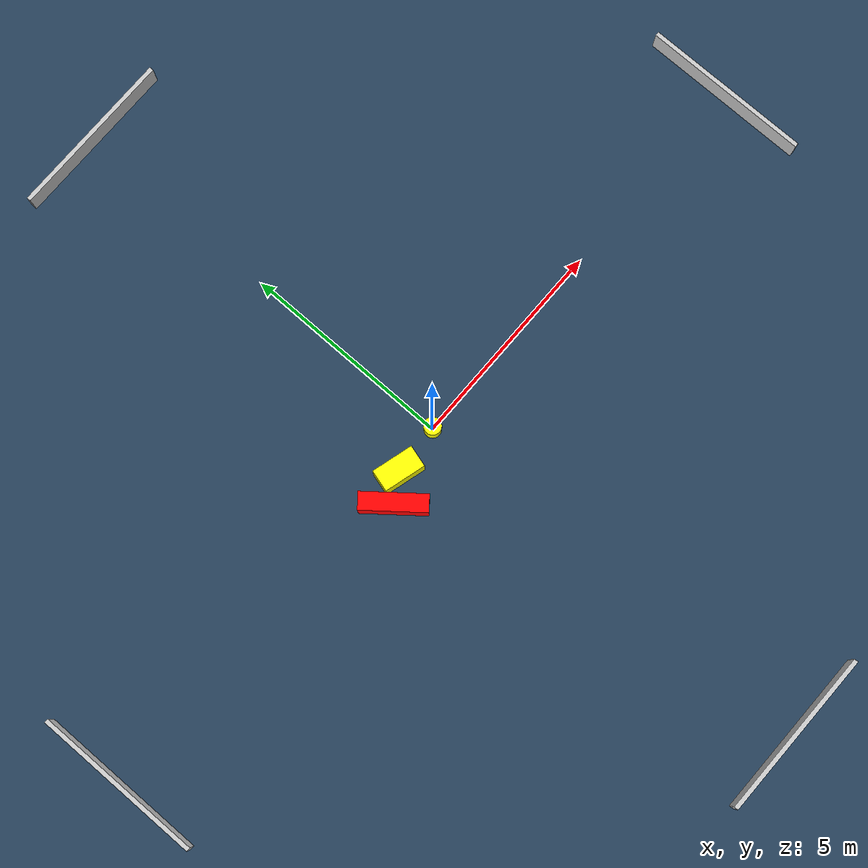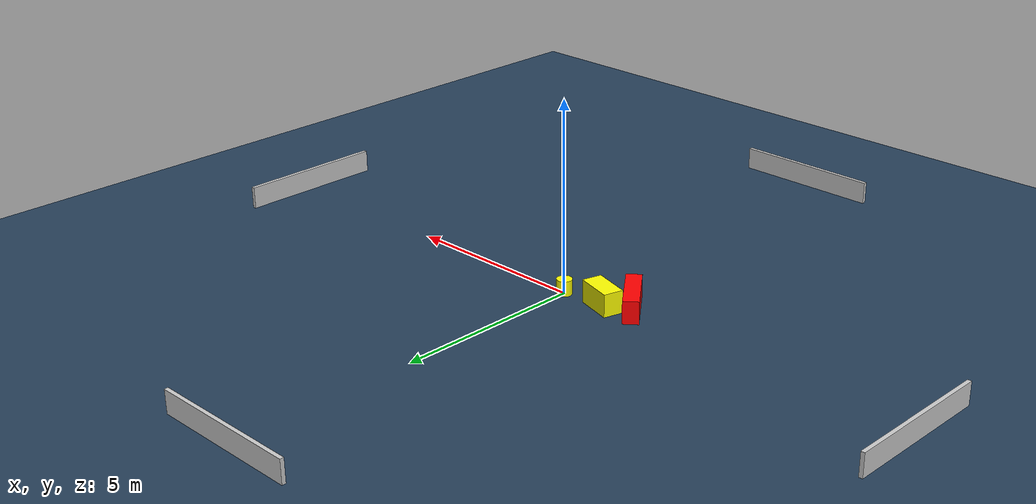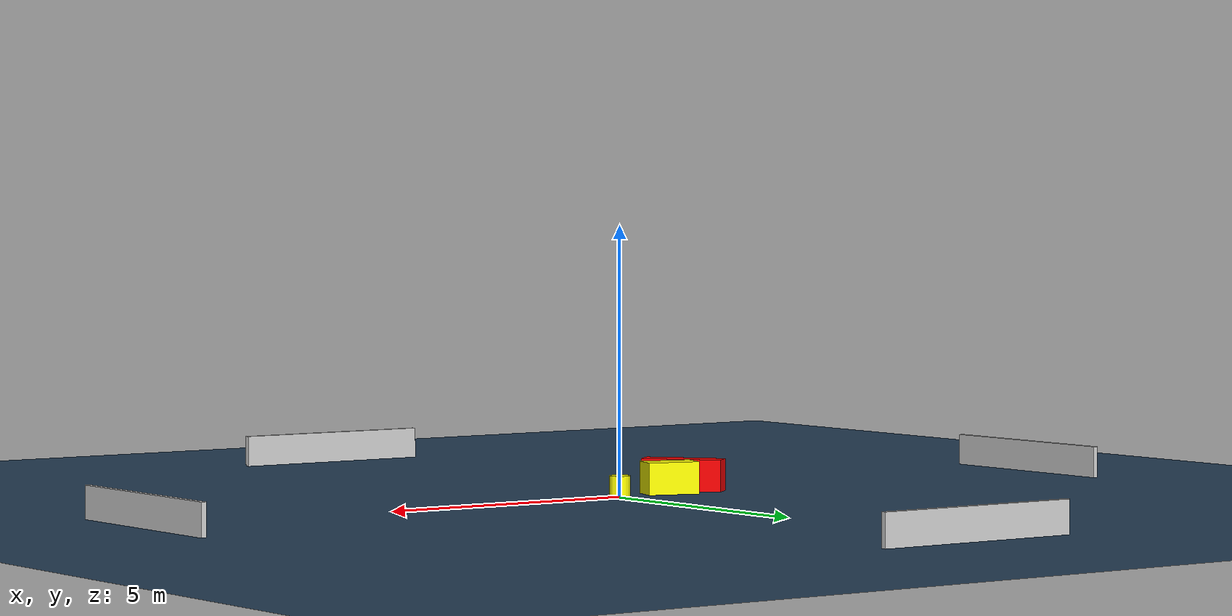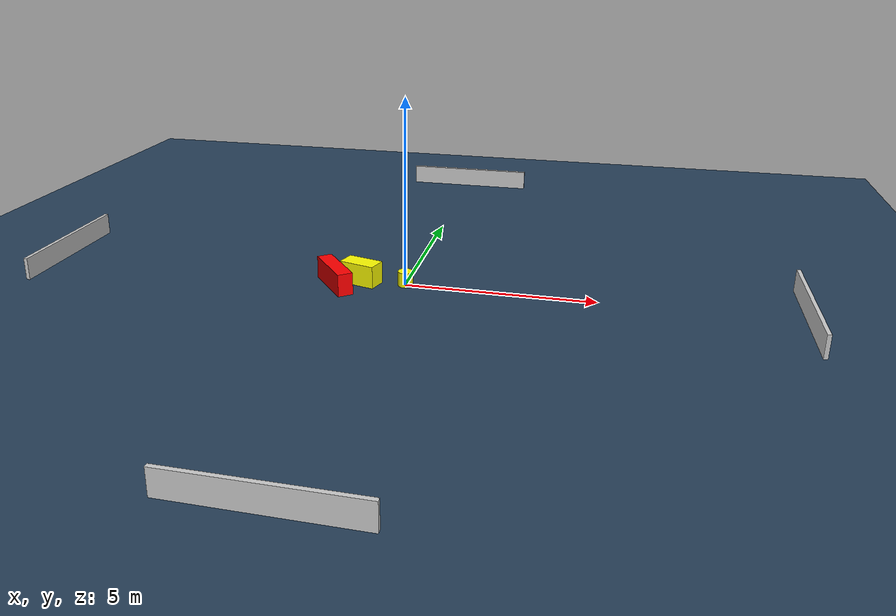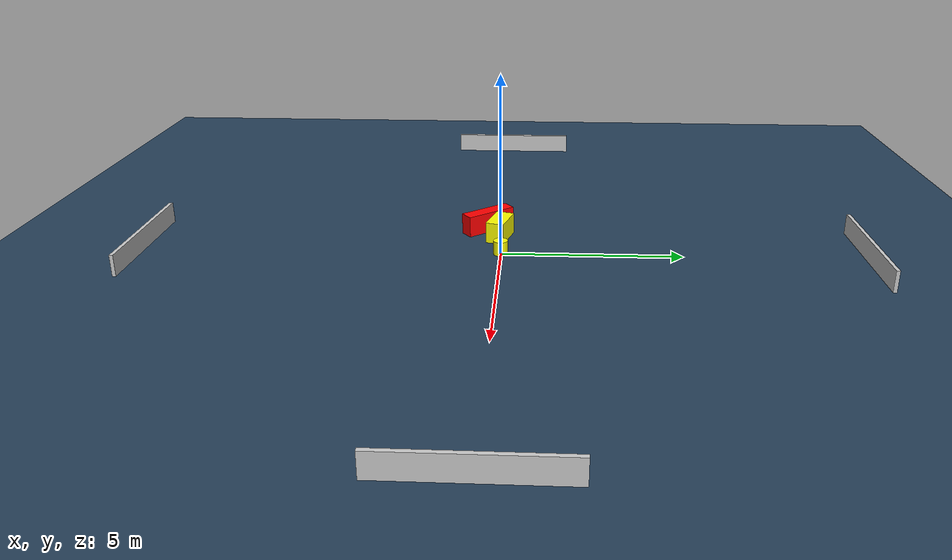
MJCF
<?xml version="1.0" ?>
<mujoco model="generated_environment">
  <option timestep="0.01" integrator="RK4" cone="elliptic"/>
  <default>
    <geom density="1"/>
  </default>
  <asset>
    <texture builtin="gradient" height="3072" name="skybox" rgb1="0.3 0.5 0.7" rgb2="0 0 0" type="skybox" width="512"/>
    <texture builtin="checker" height="300" name="groundplane" rgb1="0.2 0.3 0.4" rgb2="0.1 0.2 0.3" type="2d" width="300"/>
    <material name="groundplane" reflectance="0.2" texrepeat="5 5" texture="groundplane"/>
  </asset>
  <worldbody>
    <light dir="0 0 -1" directional="true" pos="0 0 1.5"/>
    <geom condim="3" friction="0.5 0.005 0.001" material="groundplane" name="floor" pos="0 0 0" size="0 0 0.05" type="plane"/>
    <body name="walls">
      <geom name="wall_1" condim="4" pos="-10.0 0.0 0.3" rgba="0.800000011920929 0.800000011920929 0.800000011920929 1.0" size="0.05 2.0 0.3" type="box"/>
      <geom name="wall_2" condim="4" pos="10.0 0.0 0.3" rgba="0.800000011920929 0.800000011920929 0.800000011920929 1.0" size="0.05 2.0 0.3" type="box"/>
      <geom name="wall_3" condim="4" pos="0.0 -10.0 0.3" rgba="0.800000011920929 0.800000011920929 0.800000011920929 1.0" size="2.0 0.05 0.3" type="box"/>
      <geom name="wall_4" condim="4" pos="0.0 10.0 0.3" rgba="0.800000011920929 0.800000011920929 0.800000011920929 1.0" size="2.0 0.05 0.3" type="box"/>
    </body>
    <body name="robot">
      <joint name="joint_x" type="slide" pos="0 0 0" axis="1 0 0"/>
      <joint name="joint_y" type="slide" pos="0 0 0" axis="0 1 0"/>
      <geom name="robot" type="cylinder" pos="0.0 0.0 0.2" size="0.2 0.2 0.0" mass="5.0" friction="1.0 0.005 0.0001" condim="4" rgba="1.0 1.0 0.0 1.0"/>
    </body>
    <body name="obstacle_1_movable">
      <geom name="obstacle_1_movable" condim="4" pos="-1.1966325109032094 -0.07251588626059263 0.3" euler="0 0 164.21143420556993" friction="0.0 0.005 0.001" rgba="1.0 1.0 0.0 1.0" size="0.49601621111622546 0.259551106354872 0.3" type="box" mass="0.1"/>
      <joint type="free"/>
    </body>
    <body name="obstacle_2_static">
      <geom name="obstacle_2_static" condim="4" pos="-1.8122458837777795 -0.45987860804421216 0.3" euler="0 0 308.56859108338773" friction="0.0 0.005 0.001" rgba="1.0 0.0 0.0 1.0" size="0.7662311286690606 0.20417715104514952 0.3" type="box"/>
    </body>
  </worldbody>
  <actuator>
    <motor name="actuator_x" joint="joint_x" gear="1" ctrlrange="-1 1"/>
    <motor name="actuator_y" joint="joint_y" gear="1" ctrlrange="-1 1"/>
  </actuator>
</mujoco>
